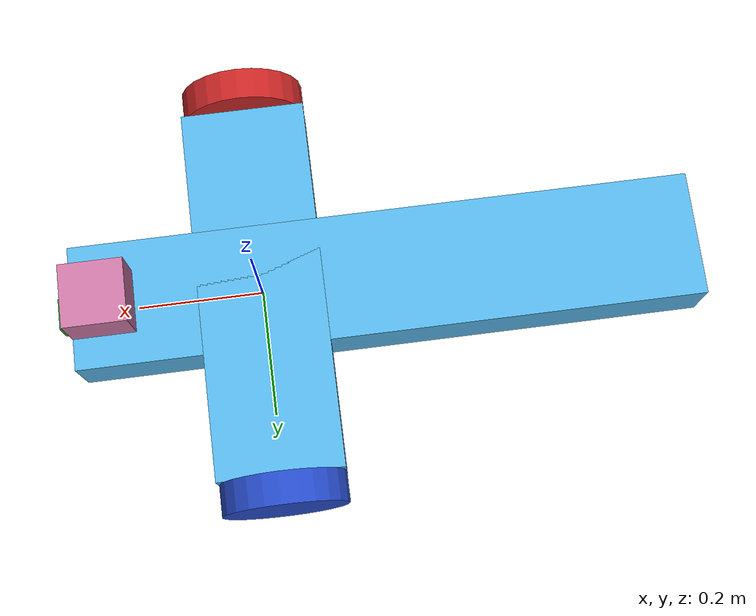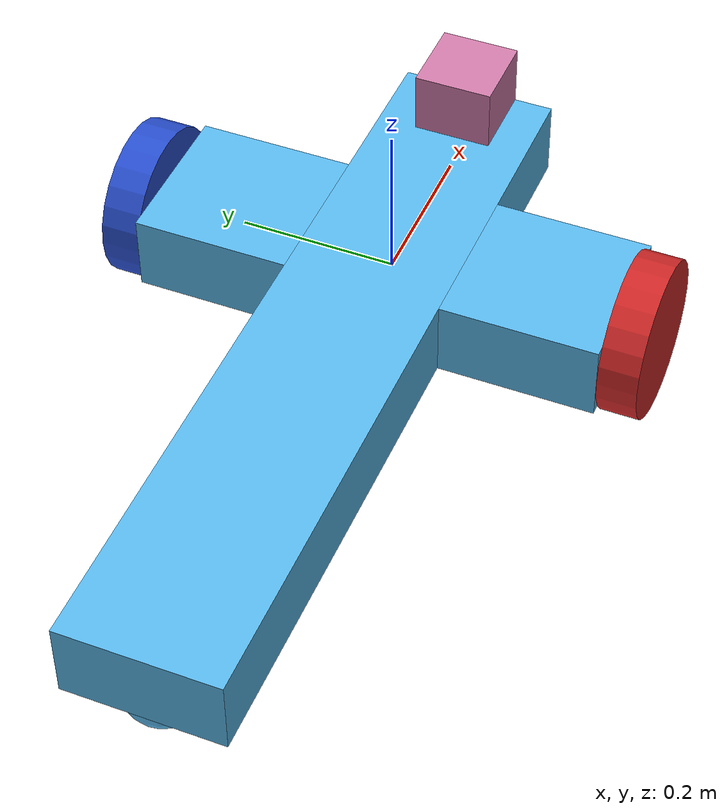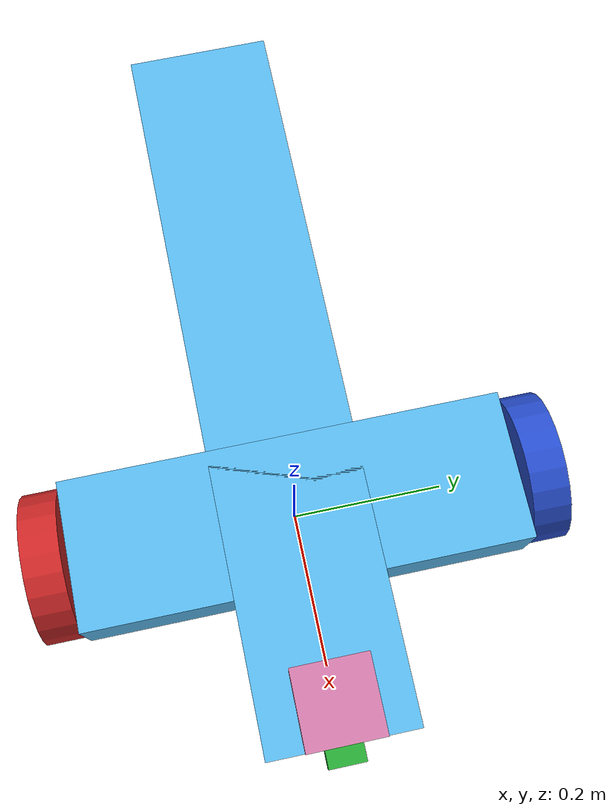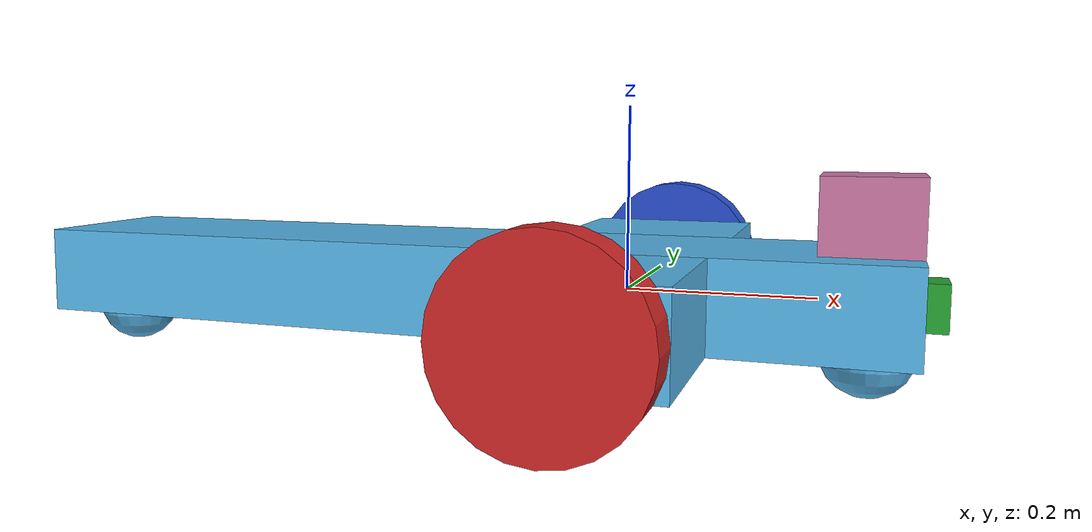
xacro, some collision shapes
<?xml version="1.0"?>

<robot name="my_robot" xmlns:xacro="http://www.ros.org/wiki/xacro">

  <xacro:include filename="$(find my_robot)/urdf/my_robot.gazebo" />

  <link name="robot_footprint"></link>

  <joint name="robot_footprint_joint" type="fixed">
    <origin xyz="0 0 0" rpy="0 0 0" />
    <parent link="robot_footprint" />
    <child link="chassis" />
  </joint>

  <link name="chassis">
    <pose>0 0 0.1 0 0 0</pose>

    <inertial>
      <mass value="15.0" />
      <origin xyz="0 0 0" rpy="0 0 0" />
      <inertia
        ixx="0.1" ixy="0" ixz="0"
        iyy="0.1" iyz="0"
        izz="0.1"
      />
    </inertial>

    <collision name="chassis_collision_1">
      <origin xyz="-.2 0 0" rpy="0 0 0" />
      <geometry>
        <box size="1.0 .2 .1" />
      </geometry>
    </collision>

    <visual name="chassis_visual_1">
      <origin xyz="-.2 0 0" rpy="0 0 0" />
      <geometry>
        <box size="1.0 .2 .1" />
      </geometry>
    </visual>

    <collision name="chassis_collision_2">
      <origin xyz="0 0 0" rpy="0 0 0" />
      <geometry>
        <box size=".2 .6 .1" />
      </geometry>
    </collision>

    <visual name="chassis_visual_2">
      <origin xyz="0 0 0" rpy="0 0 0" />
      <geometry>
        <box size=".2 .6 .1" />
      </geometry>
    </visual>

    <collision name="back_caster_collision">
      <origin xyz="-0.65 0 -0.05" rpy="0 0 0" />
      <geometry>
        <sphere radius="0.0499" />
      </geometry>
    </collision>

    <visual name="back_caster_visual">
      <origin xyz="-0.65 0 -0.05" rpy="0 0 0" />
      <geometry>
        <sphere radius="0.0499" />
      </geometry>
    </visual>

    <collision name="front_caster_collision">
      <origin xyz="0.25 0 -0.05" rpy="0 0 0" />
      <geometry>
        <sphere radius="0.0499" />
      </geometry>
    </collision>

    <visual name="front_caster_visual">
      <origin xyz="0.25 0 -0.05" rpy="0 0 0" />
      <geometry>
        <sphere radius="0.0499" />
      </geometry>
    </visual>

  </link>

  <link name="left_wheel">

    <inertial>
      <mass value="5.0" />
      <origin xyz="0 0 0" rpy="0 1.5707 1.5707" />
      <inertia
        ixx="0.1" ixy="0" ixz="0"
        iyy="0.1" iyz="0"
        izz="0.1"
      />
    </inertial>

    <collision>
      <origin xyz="0 0 0" rpy="0 1.5707 1.5707" />
      <geometry>
        <cylinder radius="0.1" length="0.05" />
      </geometry>
    </collision>

    <visual>
      <origin xyz="0 0 0" rpy="0 1.5707 1.5707" />
      <geometry>
        <cylinder radius="0.1" length="0.05" />
      </geometry>
    </visual>

  </link>

  <link name="right_wheel">

    <inertial>
      <mass value="5.0" />
      <origin xyz="0 0 0" rpy="0 1.5707 1.5707" />
      <inertia
        ixx="0.1" ixy="0" ixz="0"
        iyy="0.1" iyz="0"
        izz="0.1"
      />
    </inertial>

    <collision>
      <origin xyz="0 0 0" rpy="0 1.5707 1.5707" />
      <geometry>
        <cylinder radius="0.1" length="0.05" />
      </geometry>
    </collision>

    <visual>
      <origin xyz="0 0 0" rpy="0 1.5707 1.5707" />
      <geometry>
        <cylinder radius="0.1" length="0.05" />
      </geometry>
    </visual>

  </link>

  <gazebo reference="left_wheel">
    <material>Gazebo/Blue</material>
  </gazebo>

  <gazebo reference="right_wheel">
    <material>Gazebo/Red</material>
  </gazebo>

  <joint type="continuous" name="left_wheel_hinge">
    <origin xyz="0 0.325 0" rpy="0 0 0" />
    <child link="left_wheel" />
    <parent link="chassis" />
    <axis xyz="0 1 0" rpy="0 0 0" />
    <limit effort="10000" velocity="1000" />
    <dynamics damping="1.0" friction="1.0" />
  </joint>

  <joint type="continuous" name="right_wheel_hinge">
    <origin xyz="0 -0.325 0" rpy="0 0 0" />
    <child link="right_wheel" />
    <parent link="chassis" />
    <axis xyz="0 1 0" rpy="0 0 0" />
    <limit effort="10000" velocity="1000" />
    <dynamics damping="1.0" friction="1.0" />
  </joint>

  <link name="camera">

    <box_inertia x="0.05" y="0.05" z="0.05" m="0.1" />

    <collision>
      <origin xyz="0 0 0" rpy="0 0 0" />
      <geometry>
        <box size="0.05 0.05 0.05" />
      </geometry>
    </collision>

    <visual>
      <origin xyz="0 0 0" rpy="0 0 0" />
      <geometry>
        <box size="0.05 0.05 0.05" />
      </geometry>
    </visual>

  </link>

  <gazebo reference="camera">
    <material>Gazebo/Green</material>
  </gazebo>

  <joint type="fixed" name="camera_joint">
    <origin xyz="0.3 0 0" rpy="0 0 0" />
    <parent link="chassis" />
    <child link="camera" />
  </joint>

  <link name="camera_link_optical">
  </link>

  <joint name="camera_optical_joint" type="fixed">
    <origin xyz="0 0 0" rpy="-1.5707 0 -1.5707"/>
    <parent link="camera"/>
    <child link="camera_link_optical"/>
  </joint>

  <link name="hokuyo">

    <inertial>
      <mass value="1e-5" />
      <inertia
        ixx="1e-6" ixy="0" ixz="0"
        iyy="1e-6" iyz="0"
        izz="1e-6"
      />
    </inertial>

    <collision>
      <origin xyz="0 0 0" rpy="0 0 0" />
      <geometry>
        <box size="0.1 0.1 0.1" />
      </geometry>
    </collision>

    <visual>
      <origin xyz="0 0 0" rpy="0 0 0" />
      <geometry>
        <mesh filename="package://my_robot/meshes/hokuyo.dae" />
      </geometry>
    </visual>

  </link>

  <joint name="hokuyo" type="fixed">
    <origin xyz="0.25 0 0.08" rpy="0 0 0"/>
    <parent link="chassis" />
    <child link="hokuyo" />
  </joint>

</robot>
